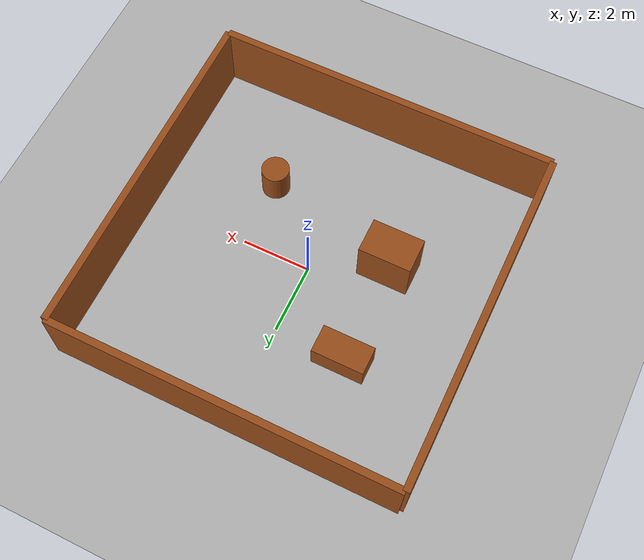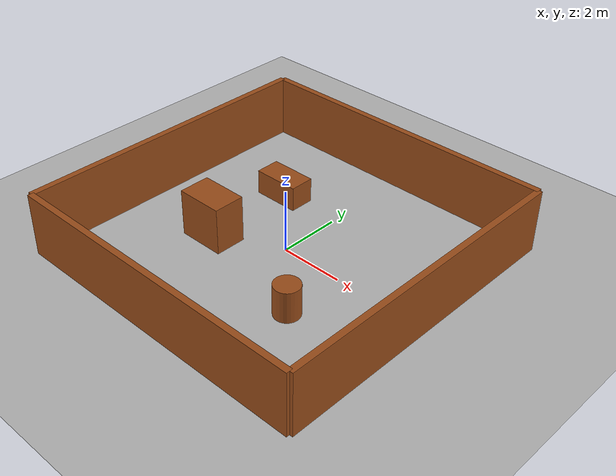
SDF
<?xml version="1.0" ?>
<sdf version="1.7">

  <world name="indoor_world">

    <plugin
      filename="ignition-gazebo-physics-system"
      name="ignition::gazebo::systems::Physics"/>

    <plugin
      filename="ignition-gazebo-user-commands-system"
      name="ignition::gazebo::systems::UserCommands"/>

    <plugin
      filename="ignition-gazebo-scene-broadcaster-system"
      name="ignition::gazebo::systems::SceneBroadcaster"/>

    <plugin
      filename="ignition-gazebo-sensors-system"
      name="ignition::gazebo::systems::Sensors">
      <render_engine>ogre2</render_engine>
    </plugin>

    <plugin
      filename="ignition-gazebo-imu-system"
      name="ignition::gazebo::systems::Imu"/>

    <light type="directional" name="sun">
      <cast_shadows>true</cast_shadows>
      <pose>0 0 10 0 0 0</pose>
      <diffuse>0.8 0.8 0.8 1</diffuse>
      <specular>0.2 0.2 0.2 1</specular>
      <direction>-0.5 0.1 -0.9</direction>
    </light>

    <model name="ground_plane">
      <static>true</static>

      <link name="link">

        <collision name="collision">
          <geometry>
            <plane>
              <normal>0 0 1</normal>
              <size>100 100</size>
            </plane>
          </geometry>
        </collision>

        <visual name="visual">
          <geometry>
            <plane>
              <normal>0 0 1</normal>
              <size>100 100</size>
            </plane>
          </geometry>

          <material>
            <ambient>0.7 0.7 0.7 1</ambient>
            <diffuse>0.7 0.7 0.7 1</diffuse>
          </material>

        </visual>

      </link>

    </model>

    <model name="north_wall">
      <static>true</static>
      <pose>0 5 1 0 0 0</pose>

      <link name="wall">
        <collision name="collision">
          <geometry>
            <box>
              <size>10 0.2 2</size>
            </box>
          </geometry>
        </collision>

        <visual name="visual">
          <geometry>
            <box>
              <size>10 0.2 2</size>
            </box>
          </geometry>
          <material>
            <ambient>0.6 0.3 0.1 1</ambient>
            <diffuse>0.6 0.3 0.1 1</diffuse>
          </material>
        </visual>
      </link>
    </model>

    <model name="south_wall">
      <static>true</static>
      <pose>0 -5 1 0 0 0</pose>

      <link name="wall">
        <collision name="collision">
          <geometry>
            <box>
              <size>10 0.2 2</size>
            </box>
          </geometry>
        </collision>

        <visual name="visual">
          <geometry>
            <box>
              <size>10 0.2 2</size>
            </box>
          </geometry>
          <material>
            <ambient>0.6 0.3 0.1 1</ambient>
            <diffuse>0.6 0.3 0.1 1</diffuse>
          </material>
        </visual>
      </link>
    </model>

    <model name="east_wall">
      <static>true</static>
      <pose>5 0 1 0 0 0</pose>

      <link name="wall">
        <collision name="collision">
          <geometry>
            <box>
              <size>0.2 10 2</size>
            </box>
          </geometry>
        </collision>

        <visual name="visual">
          <geometry>
            <box>
              <size>0.2 10 2</size>
            </box>
          </geometry>
          <material>
            <ambient>0.6 0.3 0.1 1</ambient>
            <diffuse>0.6 0.3 0.1 1</diffuse>
          </material>
        </visual>
      </link>
    </model>

    <model name="west_wall">
      <static>true</static>
      <pose>-5 0 1 0 0 0</pose>

      <link name="wall">
        <collision name="collision">
          <geometry>
            <box>
              <size>0.2 10 2</size>
            </box>
          </geometry>
        </collision>

        <visual name="visual">
          <geometry>
            <box>
              <size>0.2 10 2</size>
            </box>
          </geometry>
          <material>
            <ambient>0.6 0.3 0.1 1</ambient>
            <diffuse>0.6 0.3 0.1 1</diffuse>
          </material>
        </visual>
      </link>
    </model>

    <model name="box_2">
      <static>true</static>
      <pose>-2 -1 0.75 0 0 0</pose>

      <link name="link">

        <collision name="collision">
          <geometry>
            <box>
              <size>1.5 1 1.5</size>
            </box>
          </geometry>
        </collision>

        <visual name="visual">
          <geometry>
            <box>
              <size>1.5 1 1.5</size>
            </box>
          </geometry>
          <material>
            <ambient>0.6 0.3 0.1 1</ambient>
            <diffuse>0.6 0.3 0.1 1</diffuse>
          </material>
        </visual>

      </link>
    </model>

    <model name="cylinder_1">
      <static>true</static>
      <pose>2 -2 0.5 0 0 0</pose>

      <link name="link">

        <collision name="collision">
          <geometry>
            <cylinder>
              <radius>0.4</radius>
              <length>1.0</length>
            </cylinder>
          </geometry>
        </collision>

        <visual name="visual">
          <geometry>
            <cylinder>
              <radius>0.4</radius>
              <length>1.0</length>
            </cylinder>
          </geometry>
          <material>
            <ambient>0.6 0.3 0.1 1</ambient>
            <diffuse>0.6 0.3 0.1 1</diffuse>
          </material>
        </visual>

      </link>
    </model>

    <model name="table_obstacle">
      <static>true</static>
      <pose>-2 2 0.4 0 0 0</pose>

      <link name="link">

        <collision name="collision">
          <geometry>
            <box>
              <size>1.5 0.8 0.8</size>
            </box>
          </geometry>
        </collision>

        <visual name="visual">
          <geometry>
            <box>
              <size>1.5 0.8 0.8</size>
            </box>
          </geometry>
          <material>
            <ambient>0.6 0.3 0.1 1</ambient>
            <diffuse>0.6 0.3 0.1 1</diffuse>
          </material>
        </visual>

      </link>
    </model>

  </world>

</sdf>
